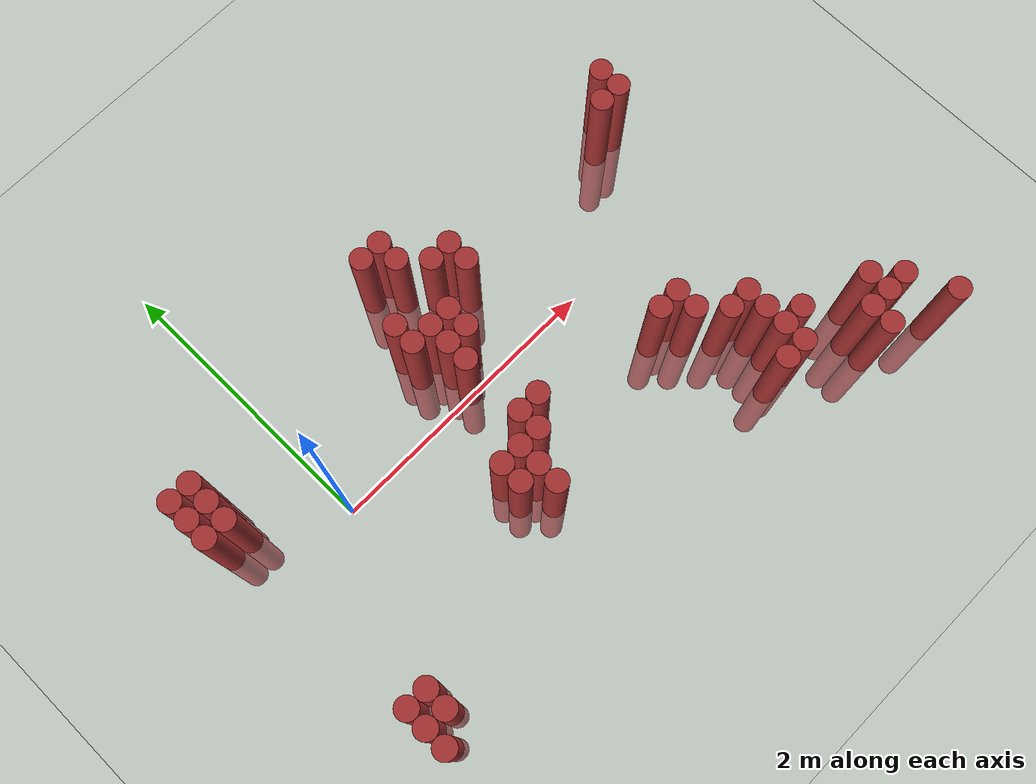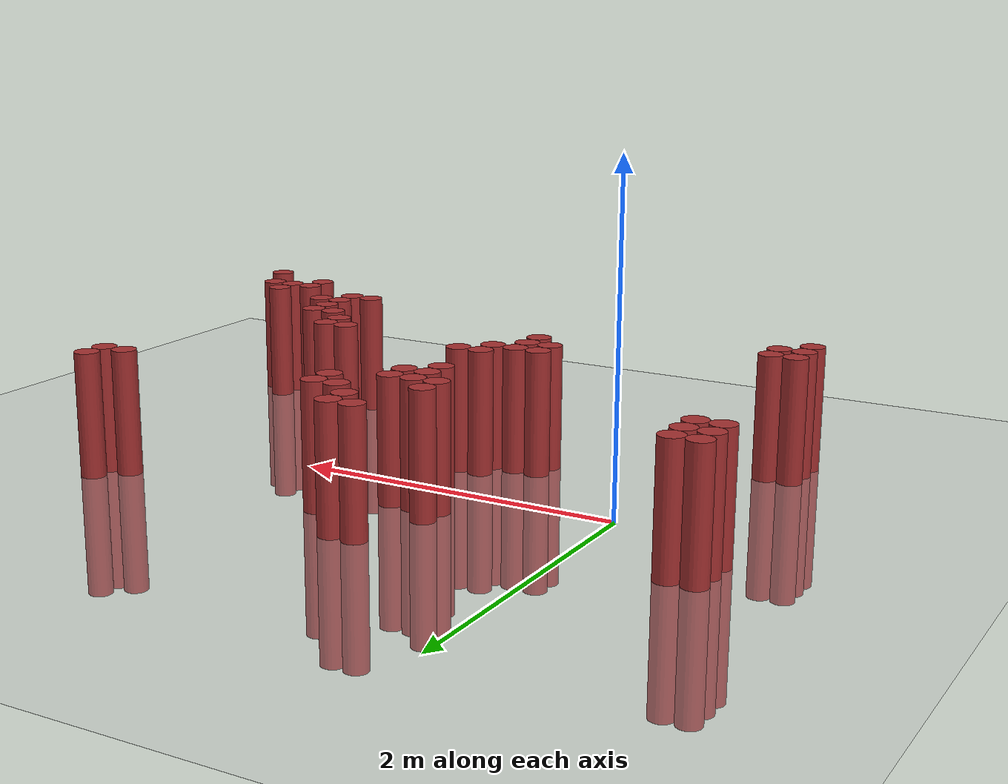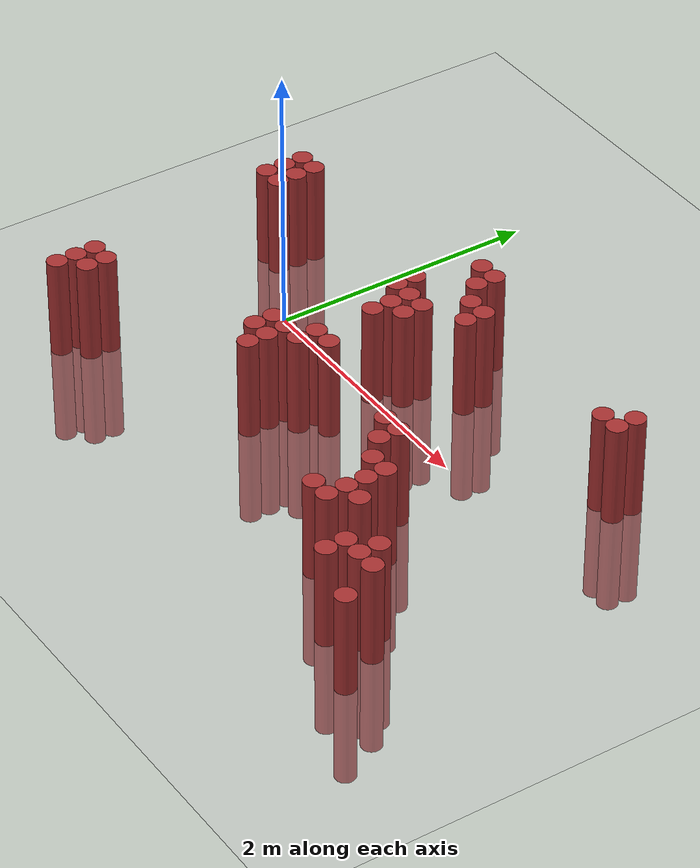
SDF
<sdf version="1.6">
 <world name="default">
  <model name="ground_plane">
   <static>1</static>
   <link name="link">
    <collision name="collision">
     <geometry><plane><normal>0 0 1</normal><size>100 100</size></plane></geometry>
     <surface><friction><ode><mu>100</mu><mu2>50</mu2></ode></friction></surface>
    </collision>
    <visual name="visual">
     <cast_shadows>0</cast_shadows>
     <geometry><plane><normal>0 0 1</normal><size>100 100</size></plane></geometry>
     <material>
      <script><uri>file://media/materials/scripts/gazebo.material</uri><name>Gazebo/Grey</name></script>
     </material>
    </visual>
   </link>
  </model>
  <model name="unit_cylinder_323">
   <static>1</static>
   <pose>-0.725000 0.325000 0.000000 0.000000 0.000000 0.000000</pose>
   <link name="link">
    <inertial>
     <mass>1</mass>
     <inertia><ixx>0.145833</ixx><ixy>0</ixy><ixz>0</ixz><iyy>0.145833</iyy><iyz>0</iyz><izz>0.125</izz></inertia>
    </inertial>
    <collision name="collision">
     <geometry><cylinder><radius>0.075000</radius><length>1.5</length></cylinder></geometry>
    </collision>
    <visual name="visual">
     <geometry><cylinder><radius>0.075000</radius><length>1.5</length></cylinder></geometry>
     <material>
      <ambient>0.648000 0.192000 0.192000 1</ambient>
      <diffuse>0.648000 0.192000 0.192000 1</diffuse>
     </material>
     <material>
      <script><name>Gazebo/Grey</name><uri>file://media/materials/scripts/gazebo.material</uri></script>
     </material>
    </visual>
   </link>
  </model>
  <model name="unit_cylinder_324">
   <static>1</static>
   <pose>-0.725000 0.475000 0.000000 0.000000 0.000000 0.000000</pose>
   <link name="link">
    <inertial>
     <mass>1</mass>
     <inertia><ixx>0.145833</ixx><ixy>0</ixy><ixz>0</ixz><iyy>0.145833</iyy><iyz>0</iyz><izz>0.125</izz></inertia>
    </inertial>
    <collision name="collision">
     <geometry><cylinder><radius>0.075000</radius><length>1.5</length></cylinder></geometry>
    </collision>
    <visual name="visual">
     <geometry><cylinder><radius>0.075000</radius><length>1.5</length></cylinder></geometry>
     <material>
      <ambient>0.648000 0.192000 0.192000 1</ambient>
      <diffuse>0.648000 0.192000 0.192000 1</diffuse>
     </material>
     <material>
      <script><name>Gazebo/Grey</name><uri>file://media/materials/scripts/gazebo.material</uri></script>
     </material>
    </visual>
   </link>
  </model>
  <model name="unit_cylinder_325">
   <static>1</static>
   <pose>-0.725000 0.625000 0.000000 0.000000 0.000000 0.000000</pose>
   <link name="link">
    <inertial>
     <mass>1</mass>
     <inertia><ixx>0.145833</ixx><ixy>0</ixy><ixz>0</ixz><iyy>0.145833</iyy><iyz>0</iyz><izz>0.125</izz></inertia>
    </inertial>
    <collision name="collision">
     <geometry><cylinder><radius>0.075000</radius><length>1.5</length></cylinder></geometry>
    </collision>
    <visual name="visual">
     <geometry><cylinder><radius>0.075000</radius><length>1.5</length></cylinder></geometry>
     <material>
      <ambient>0.648000 0.192000 0.192000 1</ambient>
      <diffuse>0.648000 0.192000 0.192000 1</diffuse>
     </material>
     <material>
      <script><name>Gazebo/Grey</name><uri>file://media/materials/scripts/gazebo.material</uri></script>
     </material>
    </visual>
   </link>
  </model>
  <model name="unit_cylinder_327">
   <static>1</static>
   <pose>-0.575000 -1.475000 0.000000 0.000000 0.000000 0.000000</pose>
   <link name="link">
    <inertial>
     <mass>1</mass>
     <inertia><ixx>0.145833</ixx><ixy>0</ixy><ixz>0</ixz><iyy>0.145833</iyy><iyz>0</iyz><izz>0.125</izz></inertia>
    </inertial>
    <collision name="collision">
     <geometry><cylinder><radius>0.075000</radius><length>1.5</length></cylinder></geometry>
    </collision>
    <visual name="visual">
     <geometry><cylinder><radius>0.075000</radius><length>1.5</length></cylinder></geometry>
     <material>
      <ambient>0.648000 0.192000 0.192000 1</ambient>
      <diffuse>0.648000 0.192000 0.192000 1</diffuse>
     </material>
     <material>
      <script><name>Gazebo/Grey</name><uri>file://media/materials/scripts/gazebo.material</uri></script>
     </material>
    </visual>
   </link>
  </model>
  <model name="unit_cylinder_328">
   <static>1</static>
   <pose>-0.575000 -1.325000 0.000000 0.000000 0.000000 0.000000</pose>
   <link name="link">
    <inertial>
     <mass>1</mass>
     <inertia><ixx>0.145833</ixx><ixy>0</ixy><ixz>0</ixz><iyy>0.145833</iyy><iyz>0</iyz><izz>0.125</izz></inertia>
    </inertial>
    <collision name="collision">
     <geometry><cylinder><radius>0.075000</radius><length>1.5</length></cylinder></geometry>
    </collision>
    <visual name="visual">
     <geometry><cylinder><radius>0.075000</radius><length>1.5</length></cylinder></geometry>
     <material>
      <ambient>0.648000 0.192000 0.192000 1</ambient>
      <diffuse>0.648000 0.192000 0.192000 1</diffuse>
     </material>
     <material>
      <script><name>Gazebo/Grey</name><uri>file://media/materials/scripts/gazebo.material</uri></script>
     </material>
    </visual>
   </link>
  </model>
  <model name="unit_cylinder_329">
   <static>1</static>
   <pose>-0.575000 -1.175000 0.000000 0.000000 0.000000 0.000000</pose>
   <link name="link">
    <inertial>
     <mass>1</mass>
     <inertia><ixx>0.145833</ixx><ixy>0</ixy><ixz>0</ixz><iyy>0.145833</iyy><iyz>0</iyz><izz>0.125</izz></inertia>
    </inertial>
    <collision name="collision">
     <geometry><cylinder><radius>0.075000</radius><length>1.5</length></cylinder></geometry>
    </collision>
    <visual name="visual">
     <geometry><cylinder><radius>0.075000</radius><length>1.5</length></cylinder></geometry>
     <material>
      <ambient>0.648000 0.192000 0.192000 1</ambient>
      <diffuse>0.648000 0.192000 0.192000 1</diffuse>
     </material>
     <material>
      <script><name>Gazebo/Grey</name><uri>file://media/materials/scripts/gazebo.material</uri></script>
     </material>
    </visual>
   </link>
  </model>
  <model name="unit_cylinder_330">
   <static>1</static>
   <pose>-0.575000 0.325000 0.000000 0.000000 0.000000 0.000000</pose>
   <link name="link">
    <inertial>
     <mass>1</mass>
     <inertia><ixx>0.145833</ixx><ixy>0</ixy><ixz>0</ixz><iyy>0.145833</iyy><iyz>0</iyz><izz>0.125</izz></inertia>
    </inertial>
    <collision name="collision">
     <geometry><cylinder><radius>0.075000</radius><length>1.5</length></cylinder></geometry>
    </collision>
    <visual name="visual">
     <geometry><cylinder><radius>0.075000</radius><length>1.5</length></cylinder></geometry>
     <material>
      <ambient>0.648000 0.192000 0.192000 1</ambient>
      <diffuse>0.648000 0.192000 0.192000 1</diffuse>
     </material>
     <material>
      <script><name>Gazebo/Grey</name><uri>file://media/materials/scripts/gazebo.material</uri></script>
     </material>
    </visual>
   </link>
  </model>
  <model name="unit_cylinder_331">
   <static>1</static>
   <pose>-0.575000 0.475000 0.000000 0.000000 0.000000 0.000000</pose>
   <link name="link">
    <inertial>
     <mass>1</mass>
     <inertia><ixx>0.145833</ixx><ixy>0</ixy><ixz>0</ixz><iyy>0.145833</iyy><iyz>0</iyz><izz>0.125</izz></inertia>
    </inertial>
    <collision name="collision">
     <geometry><cylinder><radius>0.075000</radius><length>1.5</length></cylinder></geometry>
    </collision>
    <visual name="visual">
     <geometry><cylinder><radius>0.075000</radius><length>1.5</length></cylinder></geometry>
     <material>
      <ambient>0.648000 0.192000 0.192000 1</ambient>
      <diffuse>0.648000 0.192000 0.192000 1</diffuse>
     </material>
     <material>
      <script><name>Gazebo/Grey</name><uri>file://media/materials/scripts/gazebo.material</uri></script>
     </material>
    </visual>
   </link>
  </model>
  <model name="unit_cylinder_332">
   <static>1</static>
   <pose>-0.575000 0.625000 0.000000 0.000000 0.000000 0.000000</pose>
   <link name="link">
    <inertial>
     <mass>1</mass>
     <inertia><ixx>0.145833</ixx><ixy>0</ixy><ixz>0</ixz><iyy>0.145833</iyy><iyz>0</iyz><izz>0.125</izz></inertia>
    </inertial>
    <collision name="collision">
     <geometry><cylinder><radius>0.075000</radius><length>1.5</length></cylinder></geometry>
    </collision>
    <visual name="visual">
     <geometry><cylinder><radius>0.075000</radius><length>1.5</length></cylinder></geometry>
     <material>
      <ambient>0.648000 0.192000 0.192000 1</ambient>
      <diffuse>0.648000 0.192000 0.192000 1</diffuse>
     </material>
     <material>
      <script><name>Gazebo/Grey</name><uri>file://media/materials/scripts/gazebo.material</uri></script>
     </material>
    </visual>
   </link>
  </model>
  <model name="unit_cylinder_337">
   <static>1</static>
   <pose>-0.425000 -1.325000 0.000000 0.000000 0.000000 0.000000</pose>
   <link name="link">
    <inertial>
     <mass>1</mass>
     <inertia><ixx>0.145833</ixx><ixy>0</ixy><ixz>0</ixz><iyy>0.145833</iyy><iyz>0</iyz><izz>0.125</izz></inertia>
    </inertial>
    <collision name="collision">
     <geometry><cylinder><radius>0.075000</radius><length>1.5</length></cylinder></geometry>
    </collision>
    <visual name="visual">
     <geometry><cylinder><radius>0.075000</radius><length>1.5</length></cylinder></geometry>
     <material>
      <ambient>0.648000 0.192000 0.192000 1</ambient>
      <diffuse>0.648000 0.192000 0.192000 1</diffuse>
     </material>
     <material>
      <script><name>Gazebo/Grey</name><uri>file://media/materials/scripts/gazebo.material</uri></script>
     </material>
    </visual>
   </link>
  </model>
  <model name="unit_cylinder_338">
   <static>1</static>
   <pose>-0.425000 -1.175000 0.000000 0.000000 0.000000 0.000000</pose>
   <link name="link">
    <inertial>
     <mass>1</mass>
     <inertia><ixx>0.145833</ixx><ixy>0</ixy><ixz>0</ixz><iyy>0.145833</iyy><iyz>0</iyz><izz>0.125</izz></inertia>
    </inertial>
    <collision name="collision">
     <geometry><cylinder><radius>0.075000</radius><length>1.5</length></cylinder></geometry>
    </collision>
    <visual name="visual">
     <geometry><cylinder><radius>0.075000</radius><length>1.5</length></cylinder></geometry>
     <material>
      <ambient>0.648000 0.192000 0.192000 1</ambient>
      <diffuse>0.648000 0.192000 0.192000 1</diffuse>
     </material>
     <material>
      <script><name>Gazebo/Grey</name><uri>file://media/materials/scripts/gazebo.material</uri></script>
     </material>
    </visual>
   </link>
  </model>
  <model name="unit_cylinder_344">
   <static>1</static>
   <pose>0.775000 -0.725000 0.000000 0.000000 0.000000 0.000000</pose>
   <link name="link">
    <inertial>
     <mass>1</mass>
     <inertia><ixx>0.145833</ixx><ixy>0</ixy><ixz>0</ixz><iyy>0.145833</iyy><iyz>0</iyz><izz>0.125</izz></inertia>
    </inertial>
    <collision name="collision">
     <geometry><cylinder><radius>0.075000</radius><length>1.5</length></cylinder></geometry>
    </collision>
    <visual name="visual">
     <geometry><cylinder><radius>0.075000</radius><length>1.5</length></cylinder></geometry>
     <material>
      <ambient>0.648000 0.192000 0.192000 1</ambient>
      <diffuse>0.648000 0.192000 0.192000 1</diffuse>
     </material>
     <material>
      <script><name>Gazebo/Grey</name><uri>file://media/materials/scripts/gazebo.material</uri></script>
     </material>
    </visual>
   </link>
  </model>
  <model name="unit_cylinder_345">
   <static>1</static>
   <pose>0.775000 -0.575000 0.000000 0.000000 0.000000 0.000000</pose>
   <link name="link">
    <inertial>
     <mass>1</mass>
     <inertia><ixx>0.145833</ixx><ixy>0</ixy><ixz>0</ixz><iyy>0.145833</iyy><iyz>0</iyz><izz>0.125</izz></inertia>
    </inertial>
    <collision name="collision">
     <geometry><cylinder><radius>0.075000</radius><length>1.5</length></cylinder></geometry>
    </collision>
    <visual name="visual">
     <geometry><cylinder><radius>0.075000</radius><length>1.5</length></cylinder></geometry>
     <material>
      <ambient>0.648000 0.192000 0.192000 1</ambient>
      <diffuse>0.648000 0.192000 0.192000 1</diffuse>
     </material>
     <material>
      <script><name>Gazebo/Grey</name><uri>file://media/materials/scripts/gazebo.material</uri></script>
     </material>
    </visual>
   </link>
  </model>
  <model name="unit_cylinder_346">
   <static>1</static>
   <pose>0.925000 -0.875000 0.000000 0.000000 0.000000 0.000000</pose>
   <link name="link">
    <inertial>
     <mass>1</mass>
     <inertia><ixx>0.145833</ixx><ixy>0</ixy><ixz>0</ixz><iyy>0.145833</iyy><iyz>0</iyz><izz>0.125</izz></inertia>
    </inertial>
    <collision name="collision">
     <geometry><cylinder><radius>0.075000</radius><length>1.5</length></cylinder></geometry>
    </collision>
    <visual name="visual">
     <geometry><cylinder><radius>0.075000</radius><length>1.5</length></cylinder></geometry>
     <material>
      <ambient>0.648000 0.192000 0.192000 1</ambient>
      <diffuse>0.648000 0.192000 0.192000 1</diffuse>
     </material>
     <material>
      <script><name>Gazebo/Grey</name><uri>file://media/materials/scripts/gazebo.material</uri></script>
     </material>
    </visual>
   </link>
  </model>
  <model name="unit_cylinder_347">
   <static>1</static>
   <pose>0.925000 -0.725000 0.000000 0.000000 0.000000 0.000000</pose>
   <link name="link">
    <inertial>
     <mass>1</mass>
     <inertia><ixx>0.145833</ixx><ixy>0</ixy><ixz>0</ixz><iyy>0.145833</iyy><iyz>0</iyz><izz>0.125</izz></inertia>
    </inertial>
    <collision name="collision">
     <geometry><cylinder><radius>0.075000</radius><length>1.5</length></cylinder></geometry>
    </collision>
    <visual name="visual">
     <geometry><cylinder><radius>0.075000</radius><length>1.5</length></cylinder></geometry>
     <material>
      <ambient>0.648000 0.192000 0.192000 1</ambient>
      <diffuse>0.648000 0.192000 0.192000 1</diffuse>
     </material>
     <material>
      <script><name>Gazebo/Grey</name><uri>file://media/materials/scripts/gazebo.material</uri></script>
     </material>
    </visual>
   </link>
  </model>
  <model name="unit_cylinder_348">
   <static>1</static>
   <pose>0.925000 -0.575000 0.000000 0.000000 0.000000 0.000000</pose>
   <link name="link">
    <inertial>
     <mass>1</mass>
     <inertia><ixx>0.145833</ixx><ixy>0</ixy><ixz>0</ixz><iyy>0.145833</iyy><iyz>0</iyz><izz>0.125</izz></inertia>
    </inertial>
    <collision name="collision">
     <geometry><cylinder><radius>0.075000</radius><length>1.5</length></cylinder></geometry>
    </collision>
    <visual name="visual">
     <geometry><cylinder><radius>0.075000</radius><length>1.5</length></cylinder></geometry>
     <material>
      <ambient>0.648000 0.192000 0.192000 1</ambient>
      <diffuse>0.648000 0.192000 0.192000 1</diffuse>
     </material>
     <material>
      <script><name>Gazebo/Grey</name><uri>file://media/materials/scripts/gazebo.material</uri></script>
     </material>
    </visual>
   </link>
  </model>
  <model name="unit_cylinder_349">
   <static>1</static>
   <pose>0.925000 0.325000 0.000000 0.000000 0.000000 0.000000</pose>
   <link name="link">
    <inertial>
     <mass>1</mass>
     <inertia><ixx>0.145833</ixx><ixy>0</ixy><ixz>0</ixz><iyy>0.145833</iyy><iyz>0</iyz><izz>0.125</izz></inertia>
    </inertial>
    <collision name="collision">
     <geometry><cylinder><radius>0.075000</radius><length>1.5</length></cylinder></geometry>
    </collision>
    <visual name="visual">
     <geometry><cylinder><radius>0.075000</radius><length>1.5</length></cylinder></geometry>
     <material>
      <ambient>0.648000 0.192000 0.192000 1</ambient>
      <diffuse>0.648000 0.192000 0.192000 1</diffuse>
     </material>
     <material>
      <script><name>Gazebo/Grey</name><uri>file://media/materials/scripts/gazebo.material</uri></script>
     </material>
    </visual>
   </link>
  </model>
  <model name="unit_cylinder_350">
   <static>1</static>
   <pose>0.925000 0.475000 0.000000 0.000000 0.000000 0.000000</pose>
   <link name="link">
    <inertial>
     <mass>1</mass>
     <inertia><ixx>0.145833</ixx><ixy>0</ixy><ixz>0</ixz><iyy>0.145833</iyy><iyz>0</iyz><izz>0.125</izz></inertia>
    </inertial>
    <collision name="collision">
     <geometry><cylinder><radius>0.075000</radius><length>1.5</length></cylinder></geometry>
    </collision>
    <visual name="visual">
     <geometry><cylinder><radius>0.075000</radius><length>1.5</length></cylinder></geometry>
     <material>
      <ambient>0.648000 0.192000 0.192000 1</ambient>
      <diffuse>0.648000 0.192000 0.192000 1</diffuse>
     </material>
     <material>
      <script><name>Gazebo/Grey</name><uri>file://media/materials/scripts/gazebo.material</uri></script>
     </material>
    </visual>
   </link>
  </model>
  <model name="unit_cylinder_353">
   <static>1</static>
   <pose>1.075000 -0.575000 0.000000 0.000000 0.000000 0.000000</pose>
   <link name="link">
    <inertial>
     <mass>1</mass>
     <inertia><ixx>0.145833</ixx><ixy>0</ixy><ixz>0</ixz><iyy>0.145833</iyy><iyz>0</iyz><izz>0.125</izz></inertia>
    </inertial>
    <collision name="collision">
     <geometry><cylinder><radius>0.075000</radius><length>1.5</length></cylinder></geometry>
    </collision>
    <visual name="visual">
     <geometry><cylinder><radius>0.075000</radius><length>1.5</length></cylinder></geometry>
     <material>
      <ambient>0.648000 0.192000 0.192000 1</ambient>
      <diffuse>0.648000 0.192000 0.192000 1</diffuse>
     </material>
     <material>
      <script><name>Gazebo/Grey</name><uri>file://media/materials/scripts/gazebo.material</uri></script>
     </material>
    </visual>
   </link>
  </model>
  <model name="unit_cylinder_354">
   <static>1</static>
   <pose>1.075000 -0.425000 0.000000 0.000000 0.000000 0.000000</pose>
   <link name="link">
    <inertial>
     <mass>1</mass>
     <inertia><ixx>0.145833</ixx><ixy>0</ixy><ixz>0</ixz><iyy>0.145833</iyy><iyz>0</iyz><izz>0.125</izz></inertia>
    </inertial>
    <collision name="collision">
     <geometry><cylinder><radius>0.075000</radius><length>1.5</length></cylinder></geometry>
    </collision>
    <visual name="visual">
     <geometry><cylinder><radius>0.075000</radius><length>1.5</length></cylinder></geometry>
     <material>
      <ambient>0.648000 0.192000 0.192000 1</ambient>
      <diffuse>0.648000 0.192000 0.192000 1</diffuse>
     </material>
     <material>
      <script><name>Gazebo/Grey</name><uri>file://media/materials/scripts/gazebo.material</uri></script>
     </material>
    </visual>
   </link>
  </model>
  <model name="unit_cylinder_355">
   <static>1</static>
   <pose>1.075000 0.025000 0.000000 0.000000 0.000000 0.000000</pose>
   <link name="link">
    <inertial>
     <mass>1</mass>
     <inertia><ixx>0.145833</ixx><ixy>0</ixy><ixz>0</ixz><iyy>0.145833</iyy><iyz>0</iyz><izz>0.125</izz></inertia>
    </inertial>
    <collision name="collision">
     <geometry><cylinder><radius>0.075000</radius><length>1.5</length></cylinder></geometry>
    </collision>
    <visual name="visual">
     <geometry><cylinder><radius>0.075000</radius><length>1.5</length></cylinder></geometry>
     <material>
      <ambient>0.648000 0.192000 0.192000 1</ambient>
      <diffuse>0.648000 0.192000 0.192000 1</diffuse>
     </material>
     <material>
      <script><name>Gazebo/Grey</name><uri>file://media/materials/scripts/gazebo.material</uri></script>
     </material>
    </visual>
   </link>
  </model>
  <model name="unit_cylinder_356">
   <static>1</static>
   <pose>1.075000 0.175000 0.000000 0.000000 0.000000 0.000000</pose>
   <link name="link">
    <inertial>
     <mass>1</mass>
     <inertia><ixx>0.145833</ixx><ixy>0</ixy><ixz>0</ixz><iyy>0.145833</iyy><iyz>0</iyz><izz>0.125</izz></inertia>
    </inertial>
    <collision name="collision">
     <geometry><cylinder><radius>0.075000</radius><length>1.5</length></cylinder></geometry>
    </collision>
    <visual name="visual">
     <geometry><cylinder><radius>0.075000</radius><length>1.5</length></cylinder></geometry>
     <material>
      <ambient>0.648000 0.192000 0.192000 1</ambient>
      <diffuse>0.648000 0.192000 0.192000 1</diffuse>
     </material>
     <material>
      <script><name>Gazebo/Grey</name><uri>file://media/materials/scripts/gazebo.material</uri></script>
     </material>
    </visual>
   </link>
  </model>
  <model name="unit_cylinder_357">
   <static>1</static>
   <pose>1.075000 0.325000 0.000000 0.000000 0.000000 0.000000</pose>
   <link name="link">
    <inertial>
     <mass>1</mass>
     <inertia><ixx>0.145833</ixx><ixy>0</ixy><ixz>0</ixz><iyy>0.145833</iyy><iyz>0</iyz><izz>0.125</izz></inertia>
    </inertial>
    <collision name="collision">
     <geometry><cylinder><radius>0.075000</radius><length>1.5</length></cylinder></geometry>
    </collision>
    <visual name="visual">
     <geometry><cylinder><radius>0.075000</radius><length>1.5</length></cylinder></geometry>
     <material>
      <ambient>0.648000 0.192000 0.192000 1</ambient>
      <diffuse>0.648000 0.192000 0.192000 1</diffuse>
     </material>
     <material>
      <script><name>Gazebo/Grey</name><uri>file://media/materials/scripts/gazebo.material</uri></script>
     </material>
    </visual>
   </link>
  </model>
  <model name="unit_cylinder_358">
   <static>1</static>
   <pose>1.075000 0.925000 0.000000 0.000000 0.000000 0.000000</pose>
   <link name="link">
    <inertial>
     <mass>1</mass>
     <inertia><ixx>0.145833</ixx><ixy>0</ixy><ixz>0</ixz><iyy>0.145833</iyy><iyz>0</iyz><izz>0.125</izz></inertia>
    </inertial>
    <collision name="collision">
     <geometry><cylinder><radius>0.075000</radius><length>1.5</length></cylinder></geometry>
    </collision>
    <visual name="visual">
     <geometry><cylinder><radius>0.075000</radius><length>1.5</length></cylinder></geometry>
     <material>
      <ambient>0.648000 0.192000 0.192000 1</ambient>
      <diffuse>0.648000 0.192000 0.192000 1</diffuse>
     </material>
     <material>
      <script><name>Gazebo/Grey</name><uri>file://media/materials/scripts/gazebo.material</uri></script>
     </material>
    </visual>
   </link>
  </model>
  <model name="unit_cylinder_363">
   <static>1</static>
   <pose>1.225000 -0.425000 0.000000 0.000000 0.000000 0.000000</pose>
   <link name="link">
    <inertial>
     <mass>1</mass>
     <inertia><ixx>0.145833</ixx><ixy>0</ixy><ixz>0</ixz><iyy>0.145833</iyy><iyz>0</iyz><izz>0.125</izz></inertia>
    </inertial>
    <collision name="collision">
     <geometry><cylinder><radius>0.075000</radius><length>1.5</length></cylinder></geometry>
    </collision>
    <visual name="visual">
     <geometry><cylinder><radius>0.075000</radius><length>1.5</length></cylinder></geometry>
     <material>
      <ambient>0.648000 0.192000 0.192000 1</ambient>
      <diffuse>0.648000 0.192000 0.192000 1</diffuse>
     </material>
     <material>
      <script><name>Gazebo/Grey</name><uri>file://media/materials/scripts/gazebo.material</uri></script>
     </material>
    </visual>
   </link>
  </model>
  <model name="unit_cylinder_364">
   <static>1</static>
   <pose>1.225000 0.175000 0.000000 0.000000 0.000000 0.000000</pose>
   <link name="link">
    <inertial>
     <mass>1</mass>
     <inertia><ixx>0.145833</ixx><ixy>0</ixy><ixz>0</ixz><iyy>0.145833</iyy><iyz>0</iyz><izz>0.125</izz></inertia>
    </inertial>
    <collision name="collision">
     <geometry><cylinder><radius>0.075000</radius><length>1.5</length></cylinder></geometry>
    </collision>
    <visual name="visual">
     <geometry><cylinder><radius>0.075000</radius><length>1.5</length></cylinder></geometry>
     <material>
      <ambient>0.648000 0.192000 0.192000 1</ambient>
      <diffuse>0.648000 0.192000 0.192000 1</diffuse>
     </material>
     <material>
      <script><name>Gazebo/Grey</name><uri>file://media/materials/scripts/gazebo.material</uri></script>
     </material>
    </visual>
   </link>
  </model>
  <model name="unit_cylinder_365">
   <static>1</static>
   <pose>1.225000 0.325000 0.000000 0.000000 0.000000 0.000000</pose>
   <link name="link">
    <inertial>
     <mass>1</mass>
     <inertia><ixx>0.145833</ixx><ixy>0</ixy><ixz>0</ixz><iyy>0.145833</iyy><iyz>0</iyz><izz>0.125</izz></inertia>
    </inertial>
    <collision name="collision">
     <geometry><cylinder><radius>0.075000</radius><length>1.5</length></cylinder></geometry>
    </collision>
    <visual name="visual">
     <geometry><cylinder><radius>0.075000</radius><length>1.5</length></cylinder></geometry>
     <material>
      <ambient>0.648000 0.192000 0.192000 1</ambient>
      <diffuse>0.648000 0.192000 0.192000 1</diffuse>
     </material>
     <material>
      <script><name>Gazebo/Grey</name><uri>file://media/materials/scripts/gazebo.material</uri></script>
     </material>
    </visual>
   </link>
  </model>
  <model name="unit_cylinder_366">
   <static>1</static>
   <pose>1.225000 0.775000 0.000000 0.000000 0.000000 0.000000</pose>
   <link name="link">
    <inertial>
     <mass>1</mass>
     <inertia><ixx>0.145833</ixx><ixy>0</ixy><ixz>0</ixz><iyy>0.145833</iyy><iyz>0</iyz><izz>0.125</izz></inertia>
    </inertial>
    <collision name="collision">
     <geometry><cylinder><radius>0.075000</radius><length>1.5</length></cylinder></geometry>
    </collision>
    <visual name="visual">
     <geometry><cylinder><radius>0.075000</radius><length>1.5</length></cylinder></geometry>
     <material>
      <ambient>0.648000 0.192000 0.192000 1</ambient>
      <diffuse>0.648000 0.192000 0.192000 1</diffuse>
     </material>
     <material>
      <script><name>Gazebo/Grey</name><uri>file://media/materials/scripts/gazebo.material</uri></script>
     </material>
    </visual>
   </link>
  </model>
  <model name="unit_cylinder_367">
   <static>1</static>
   <pose>1.225000 0.925000 0.000000 0.000000 0.000000 0.000000</pose>
   <link name="link">
    <inertial>
     <mass>1</mass>
     <inertia><ixx>0.145833</ixx><ixy>0</ixy><ixz>0</ixz><iyy>0.145833</iyy><iyz>0</iyz><izz>0.125</izz></inertia>
    </inertial>
    <collision name="collision">
     <geometry><cylinder><radius>0.075000</radius><length>1.5</length></cylinder></geometry>
    </collision>
    <visual name="visual">
     <geometry><cylinder><radius>0.075000</radius><length>1.5</length></cylinder></geometry>
     <material>
      <ambient>0.648000 0.192000 0.192000 1</ambient>
      <diffuse>0.648000 0.192000 0.192000 1</diffuse>
     </material>
     <material>
      <script><name>Gazebo/Grey</name><uri>file://media/materials/scripts/gazebo.material</uri></script>
     </material>
    </visual>
   </link>
  </model>
  <model name="unit_cylinder_371">
   <static>1</static>
   <pose>1.375000 0.625000 0.000000 0.000000 0.000000 0.000000</pose>
   <link name="link">
    <inertial>
     <mass>1</mass>
     <inertia><ixx>0.145833</ixx><ixy>0</ixy><ixz>0</ixz><iyy>0.145833</iyy><iyz>0</iyz><izz>0.125</izz></inertia>
    </inertial>
    <collision name="collision">
     <geometry><cylinder><radius>0.075000</radius><length>1.5</length></cylinder></geometry>
    </collision>
    <visual name="visual">
     <geometry><cylinder><radius>0.075000</radius><length>1.5</length></cylinder></geometry>
     <material>
      <ambient>0.648000 0.192000 0.192000 1</ambient>
      <diffuse>0.648000 0.192000 0.192000 1</diffuse>
     </material>
     <material>
      <script><name>Gazebo/Grey</name><uri>file://media/materials/scripts/gazebo.material</uri></script>
     </material>
    </visual>
   </link>
  </model>
  <model name="unit_cylinder_373">
   <static>1</static>
   <pose>1.525000 0.475000 0.000000 0.000000 0.000000 0.000000</pose>
   <link name="link">
    <inertial>
     <mass>1</mass>
     <inertia><ixx>0.145833</ixx><ixy>0</ixy><ixz>0</ixz><iyy>0.145833</iyy><iyz>0</iyz><izz>0.125</izz></inertia>
    </inertial>
    <collision name="collision">
     <geometry><cylinder><radius>0.075000</radius><length>1.5</length></cylinder></geometry>
    </collision>
    <visual name="visual">
     <geometry><cylinder><radius>0.075000</radius><length>1.5</length></cylinder></geometry>
     <material>
      <ambient>0.648000 0.192000 0.192000 1</ambient>
      <diffuse>0.648000 0.192000 0.192000 1</diffuse>
     </material>
     <material>
      <script><name>Gazebo/Grey</name><uri>file://media/materials/scripts/gazebo.material</uri></script>
     </material>
    </visual>
   </link>
  </model>
  <model name="unit_cylinder_374">
   <static>1</static>
   <pose>1.525000 0.625000 0.000000 0.000000 0.000000 0.000000</pose>
   <link name="link">
    <inertial>
     <mass>1</mass>
     <inertia><ixx>0.145833</ixx><ixy>0</ixy><ixz>0</ixz><iyy>0.145833</iyy><iyz>0</iyz><izz>0.125</izz></inertia>
    </inertial>
    <collision name="collision">
     <geometry><cylinder><radius>0.075000</radius><length>1.5</length></cylinder></geometry>
    </collision>
    <visual name="visual">
     <geometry><cylinder><radius>0.075000</radius><length>1.5</length></cylinder></geometry>
     <material>
      <ambient>0.648000 0.192000 0.192000 1</ambient>
      <diffuse>0.648000 0.192000 0.192000 1</diffuse>
     </material>
     <material>
      <script><name>Gazebo/Grey</name><uri>file://media/materials/scripts/gazebo.material</uri></script>
     </material>
    </visual>
   </link>
  </model>
  <model name="unit_cylinder_386">
   <static>1</static>
   <pose>2.125000 -0.575000 0.000000 0.000000 0.000000 0.000000</pose>
   <link name="link">
    <inertial>
     <mass>1</mass>
     <inertia><ixx>0.145833</ixx><ixy>0</ixy><ixz>0</ixz><iyy>0.145833</iyy><iyz>0</iyz><izz>0.125</izz></inertia>
    </inertial>
    <collision name="collision">
     <geometry><cylinder><radius>0.075000</radius><length>1.5</length></cylinder></geometry>
    </collision>
    <visual name="visual">
     <geometry><cylinder><radius>0.075000</radius><length>1.5</length></cylinder></geometry>
     <material>
      <ambient>0.648000 0.192000 0.192000 1</ambient>
      <diffuse>0.648000 0.192000 0.192000 1</diffuse>
     </material>
     <material>
      <script><name>Gazebo/Grey</name><uri>file://media/materials/scripts/gazebo.material</uri></script>
     </material>
    </visual>
   </link>
  </model>
  <model name="unit_cylinder_389">
   <static>1</static>
   <pose>2.275000 -0.725000 0.000000 0.000000 0.000000 0.000000</pose>
   <link name="link">
    <inertial>
     <mass>1</mass>
     <inertia><ixx>0.145833</ixx><ixy>0</ixy><ixz>0</ixz><iyy>0.145833</iyy><iyz>0</iyz><izz>0.125</izz></inertia>
    </inertial>
    <collision name="collision">
     <geometry><cylinder><radius>0.075000</radius><length>1.5</length></cylinder></geometry>
    </collision>
    <visual name="visual">
     <geometry><cylinder><radius>0.075000</radius><length>1.5</length></cylinder></geometry>
     <material>
      <ambient>0.648000 0.192000 0.192000 1</ambient>
      <diffuse>0.648000 0.192000 0.192000 1</diffuse>
     </material>
     <material>
      <script><name>Gazebo/Grey</name><uri>file://media/materials/scripts/gazebo.material</uri></script>
     </material>
    </visual>
   </link>
  </model>
  <model name="unit_cylinder_390">
   <static>1</static>
   <pose>2.275000 -0.575000 0.000000 0.000000 0.000000 0.000000</pose>
   <link name="link">
    <inertial>
     <mass>1</mass>
     <inertia><ixx>0.145833</ixx><ixy>0</ixy><ixz>0</ixz><iyy>0.145833</iyy><iyz>0</iyz><izz>0.125</izz></inertia>
    </inertial>
    <collision name="collision">
     <geometry><cylinder><radius>0.075000</radius><length>1.5</length></cylinder></geometry>
    </collision>
    <visual name="visual">
     <geometry><cylinder><radius>0.075000</radius><length>1.5</length></cylinder></geometry>
     <material>
      <ambient>0.648000 0.192000 0.192000 1</ambient>
      <diffuse>0.648000 0.192000 0.192000 1</diffuse>
     </material>
     <material>
      <script><name>Gazebo/Grey</name><uri>file://media/materials/scripts/gazebo.material</uri></script>
     </material>
    </visual>
   </link>
  </model>
  <model name="unit_cylinder_393">
   <static>1</static>
   <pose>2.425000 -1.325000 0.000000 0.000000 0.000000 0.000000</pose>
   <link name="link">
    <inertial>
     <mass>1</mass>
     <inertia><ixx>0.145833</ixx><ixy>0</ixy><ixz>0</ixz><iyy>0.145833</iyy><iyz>0</iyz><izz>0.125</izz></inertia>
    </inertial>
    <collision name="collision">
     <geometry><cylinder><radius>0.075000</radius><length>1.5</length></cylinder></geometry>
    </collision>
    <visual name="visual">
     <geometry><cylinder><radius>0.075000</radius><length>1.5</length></cylinder></geometry>
     <material>
      <ambient>0.648000 0.192000 0.192000 1</ambient>
      <diffuse>0.648000 0.192000 0.192000 1</diffuse>
     </material>
     <material>
      <script><name>Gazebo/Grey</name><uri>file://media/materials/scripts/gazebo.material</uri></script>
     </material>
    </visual>
   </link>
  </model>
  <model name="unit_cylinder_394">
   <static>1</static>
   <pose>2.425000 -0.875000 0.000000 0.000000 0.000000 0.000000</pose>
   <link name="link">
    <inertial>
     <mass>1</mass>
     <inertia><ixx>0.145833</ixx><ixy>0</ixy><ixz>0</ixz><iyy>0.145833</iyy><iyz>0</iyz><izz>0.125</izz></inertia>
    </inertial>
    <collision name="collision">
     <geometry><cylinder><radius>0.075000</radius><length>1.5</length></cylinder></geometry>
    </collision>
    <visual name="visual">
     <geometry><cylinder><radius>0.075000</radius><length>1.5</length></cylinder></geometry>
     <material>
      <ambient>0.648000 0.192000 0.192000 1</ambient>
      <diffuse>0.648000 0.192000 0.192000 1</diffuse>
     </material>
     <material>
      <script><name>Gazebo/Grey</name><uri>file://media/materials/scripts/gazebo.material</uri></script>
     </material>
    </visual>
   </link>
  </model>
  <model name="unit_cylinder_399">
   <static>1</static>
   <pose>2.575000 -1.325000 0.000000 0.000000 0.000000 0.000000</pose>
   <link name="link">
    <inertial>
     <mass>1</mass>
     <inertia><ixx>0.145833</ixx><ixy>0</ixy><ixz>0</ixz><iyy>0.145833</iyy><iyz>0</iyz><izz>0.125</izz></inertia>
    </inertial>
    <collision name="collision">
     <geometry><cylinder><radius>0.075000</radius><length>1.5</length></cylinder></geometry>
    </collision>
    <visual name="visual">
     <geometry><cylinder><radius>0.075000</radius><length>1.5</length></cylinder></geometry>
     <material>
      <ambient>0.648000 0.192000 0.192000 1</ambient>
      <diffuse>0.648000 0.192000 0.192000 1</diffuse>
     </material>
     <material>
      <script><name>Gazebo/Grey</name><uri>file://media/materials/scripts/gazebo.material</uri></script>
     </material>
    </visual>
   </link>
  </model>
  <model name="unit_cylinder_400">
   <static>1</static>
   <pose>2.575000 -1.175000 0.000000 0.000000 0.000000 0.000000</pose>
   <link name="link">
    <inertial>
     <mass>1</mass>
     <inertia><ixx>0.145833</ixx><ixy>0</ixy><ixz>0</ixz><iyy>0.145833</iyy><iyz>0</iyz><izz>0.125</izz></inertia>
    </inertial>
    <collision name="collision">
     <geometry><cylinder><radius>0.075000</radius><length>1.5</length></cylinder></geometry>
    </collision>
    <visual name="visual">
     <geometry><cylinder><radius>0.075000</radius><length>1.5</length></cylinder></geometry>
     <material>
      <ambient>0.648000 0.192000 0.192000 1</ambient>
      <diffuse>0.648000 0.192000 0.192000 1</diffuse>
     </material>
     <material>
      <script><name>Gazebo/Grey</name><uri>file://media/materials/scripts/gazebo.material</uri></script>
     </material>
    </visual>
   </link>
  </model>
  <model name="unit_cylinder_401">
   <static>1</static>
   <pose>2.575000 -1.025000 0.000000 0.000000 0.000000 0.000000</pose>
   <link name="link">
    <inertial>
     <mass>1</mass>
     <inertia><ixx>0.145833</ixx><ixy>0</ixy><ixz>0</ixz><iyy>0.145833</iyy><iyz>0</iyz><izz>0.125</izz></inertia>
    </inertial>
    <collision name="collision">
     <geometry><cylinder><radius>0.075000</radius><length>1.5</length></cylinder></geometry>
    </collision>
    <visual name="visual">
     <geometry><cylinder><radius>0.075000</radius><length>1.5</length></cylinder></geometry>
     <material>
      <ambient>0.648000 0.192000 0.192000 1</ambient>
      <diffuse>0.648000 0.192000 0.192000 1</diffuse>
     </material>
     <material>
      <script><name>Gazebo/Grey</name><uri>file://media/materials/scripts/gazebo.material</uri></script>
     </material>
    </visual>
   </link>
  </model>
  <model name="unit_cylinder_402">
   <static>1</static>
   <pose>2.575000 -0.875000 0.000000 0.000000 0.000000 0.000000</pose>
   <link name="link">
    <inertial>
     <mass>1</mass>
     <inertia><ixx>0.145833</ixx><ixy>0</ixy><ixz>0</ixz><iyy>0.145833</iyy><iyz>0</iyz><izz>0.125</izz></inertia>
    </inertial>
    <collision name="collision">
     <geometry><cylinder><radius>0.075000</radius><length>1.5</length></cylinder></geometry>
    </collision>
    <visual name="visual">
     <geometry><cylinder><radius>0.075000</radius><length>1.5</length></cylinder></geometry>
     <material>
      <ambient>0.648000 0.192000 0.192000 1</ambient>
      <diffuse>0.648000 0.192000 0.192000 1</diffuse>
     </material>
     <material>
      <script><name>Gazebo/Grey</name><uri>file://media/materials/scripts/gazebo.material</uri></script>
     </material>
    </visual>
   </link>
  </model>
  <model name="unit_cylinder_404">
   <static>1</static>
   <pose>2.725000 -1.175000 0.000000 0.000000 0.000000 0.000000</pose>
   <link name="link">
    <inertial>
     <mass>1</mass>
     <inertia><ixx>0.145833</ixx><ixy>0</ixy><ixz>0</ixz><iyy>0.145833</iyy><iyz>0</iyz><izz>0.125</izz></inertia>
    </inertial>
    <collision name="collision">
     <geometry><cylinder><radius>0.075000</radius><length>1.5</length></cylinder></geometry>
    </collision>
    <visual name="visual">
     <geometry><cylinder><radius>0.075000</radius><length>1.5</length></cylinder></geometry>
     <material>
      <ambient>0.648000 0.192000 0.192000 1</ambient>
      <diffuse>0.648000 0.192000 0.192000 1</diffuse>
     </material>
     <material>
      <script><name>Gazebo/Grey</name><uri>file://media/materials/scripts/gazebo.material</uri></script>
     </material>
    </visual>
   </link>
  </model>
  <model name="unit_cylinder_405">
   <static>1</static>
   <pose>2.875000 0.625000 0.000000 0.000000 0.000000 0.000000</pose>
   <link name="link">
    <inertial>
     <mass>1</mass>
     <inertia><ixx>0.145833</ixx><ixy>0</ixy><ixz>0</ixz><iyy>0.145833</iyy><iyz>0</iyz><izz>0.125</izz></inertia>
    </inertial>
    <collision name="collision">
     <geometry><cylinder><radius>0.075000</radius><length>1.5</length></cylinder></geometry>
    </collision>
    <visual name="visual">
     <geometry><cylinder><radius>0.075000</radius><length>1.5</length></cylinder></geometry>
     <material>
      <ambient>0.648000 0.192000 0.192000 1</ambient>
      <diffuse>0.648000 0.192000 0.192000 1</diffuse>
     </material>
     <material>
      <script><name>Gazebo/Grey</name><uri>file://media/materials/scripts/gazebo.material</uri></script>
     </material>
    </visual>
   </link>
  </model>
  <model name="unit_cylinder_407">
   <static>1</static>
   <pose>3.025000 -1.625000 0.000000 0.000000 0.000000 0.000000</pose>
   <link name="link">
    <inertial>
     <mass>1</mass>
     <inertia><ixx>0.145833</ixx><ixy>0</ixy><ixz>0</ixz><iyy>0.145833</iyy><iyz>0</iyz><izz>0.125</izz></inertia>
    </inertial>
    <collision name="collision">
     <geometry><cylinder><radius>0.075000</radius><length>1.5</length></cylinder></geometry>
    </collision>
    <visual name="visual">
     <geometry><cylinder><radius>0.075000</radius><length>1.5</length></cylinder></geometry>
     <material>
      <ambient>0.648000 0.192000 0.192000 1</ambient>
      <diffuse>0.648000 0.192000 0.192000 1</diffuse>
     </material>
     <material>
      <script><name>Gazebo/Grey</name><uri>file://media/materials/scripts/gazebo.material</uri></script>
     </material>
    </visual>
   </link>
  </model>
  <model name="unit_cylinder_408">
   <static>1</static>
   <pose>3.025000 -1.475000 0.000000 0.000000 0.000000 0.000000</pose>
   <link name="link">
    <inertial>
     <mass>1</mass>
     <inertia><ixx>0.145833</ixx><ixy>0</ixy><ixz>0</ixz><iyy>0.145833</iyy><iyz>0</iyz><izz>0.125</izz></inertia>
    </inertial>
    <collision name="collision">
     <geometry><cylinder><radius>0.075000</radius><length>1.5</length></cylinder></geometry>
    </collision>
    <visual name="visual">
     <geometry><cylinder><radius>0.075000</radius><length>1.5</length></cylinder></geometry>
     <material>
      <ambient>0.648000 0.192000 0.192000 1</ambient>
      <diffuse>0.648000 0.192000 0.192000 1</diffuse>
     </material>
     <material>
      <script><name>Gazebo/Grey</name><uri>file://media/materials/scripts/gazebo.material</uri></script>
     </material>
    </visual>
   </link>
  </model>
  <model name="unit_cylinder_409">
   <static>1</static>
   <pose>3.025000 0.625000 0.000000 0.000000 0.000000 0.000000</pose>
   <link name="link">
    <inertial>
     <mass>1</mass>
     <inertia><ixx>0.145833</ixx><ixy>0</ixy><ixz>0</ixz><iyy>0.145833</iyy><iyz>0</iyz><izz>0.125</izz></inertia>
    </inertial>
    <collision name="collision">
     <geometry><cylinder><radius>0.075000</radius><length>1.5</length></cylinder></geometry>
    </collision>
    <visual name="visual">
     <geometry><cylinder><radius>0.075000</radius><length>1.5</length></cylinder></geometry>
     <material>
      <ambient>0.648000 0.192000 0.192000 1</ambient>
      <diffuse>0.648000 0.192000 0.192000 1</diffuse>
     </material>
     <material>
      <script><name>Gazebo/Grey</name><uri>file://media/materials/scripts/gazebo.material</uri></script>
     </material>
    </visual>
   </link>
  </model>
  <model name="unit_cylinder_410">
   <static>1</static>
   <pose>3.025000 0.775000 0.000000 0.000000 0.000000 0.000000</pose>
   <link name="link">
    <inertial>
     <mass>1</mass>
     <inertia><ixx>0.145833</ixx><ixy>0</ixy><ixz>0</ixz><iyy>0.145833</iyy><iyz>0</iyz><izz>0.125</izz></inertia>
    </inertial>
    <collision name="collision">
     <geometry><cylinder><radius>0.075000</radius><length>1.5</length></cylinder></geometry>
    </collision>
    <visual name="visual">
     <geometry><cylinder><radius>0.075000</radius><length>1.5</length></cylinder></geometry>
     <material>
      <ambient>0.648000 0.192000 0.192000 1</ambient>
      <diffuse>0.648000 0.192000 0.192000 1</diffuse>
     </material>
     <material>
      <script><name>Gazebo/Grey</name><uri>file://media/materials/scripts/gazebo.material</uri></script>
     </material>
    </visual>
   </link>
  </model>
  <model name="unit_cylinder_413">
   <static>1</static>
   <pose>3.175000 -1.475000 0.000000 0.000000 0.000000 0.000000</pose>
   <link name="link">
    <inertial>
     <mass>1</mass>
     <inertia><ixx>0.145833</ixx><ixy>0</ixy><ixz>0</ixz><iyy>0.145833</iyy><iyz>0</iyz><izz>0.125</izz></inertia>
    </inertial>
    <collision name="collision">
     <geometry><cylinder><radius>0.075000</radius><length>1.5</length></cylinder></geometry>
    </collision>
    <visual name="visual">
     <geometry><cylinder><radius>0.075000</radius><length>1.5</length></cylinder></geometry>
     <material>
      <ambient>0.648000 0.192000 0.192000 1</ambient>
      <diffuse>0.648000 0.192000 0.192000 1</diffuse>
     </material>
     <material>
      <script><name>Gazebo/Grey</name><uri>file://media/materials/scripts/gazebo.material</uri></script>
     </material>
    </visual>
   </link>
  </model>
  <model name="unit_cylinder_414">
   <static>1</static>
   <pose>3.175000 -1.325000 0.000000 0.000000 0.000000 0.000000</pose>
   <link name="link">
    <inertial>
     <mass>1</mass>
     <inertia><ixx>0.145833</ixx><ixy>0</ixy><ixz>0</ixz><iyy>0.145833</iyy><iyz>0</iyz><izz>0.125</izz></inertia>
    </inertial>
    <collision name="collision">
     <geometry><cylinder><radius>0.075000</radius><length>1.5</length></cylinder></geometry>
    </collision>
    <visual name="visual">
     <geometry><cylinder><radius>0.075000</radius><length>1.5</length></cylinder></geometry>
     <material>
      <ambient>0.648000 0.192000 0.192000 1</ambient>
      <diffuse>0.648000 0.192000 0.192000 1</diffuse>
     </material>
     <material>
      <script><name>Gazebo/Grey</name><uri>file://media/materials/scripts/gazebo.material</uri></script>
     </material>
    </visual>
   </link>
  </model>
  <model name="unit_cylinder_418">
   <static>1</static>
   <pose>3.325000 -1.475000 0.000000 0.000000 0.000000 0.000000</pose>
   <link name="link">
    <inertial>
     <mass>1</mass>
     <inertia><ixx>0.145833</ixx><ixy>0</ixy><ixz>0</ixz><iyy>0.145833</iyy><iyz>0</iyz><izz>0.125</izz></inertia>
    </inertial>
    <collision name="collision">
     <geometry><cylinder><radius>0.075000</radius><length>1.5</length></cylinder></geometry>
    </collision>
    <visual name="visual">
     <geometry><cylinder><radius>0.075000</radius><length>1.5</length></cylinder></geometry>
     <material>
      <ambient>0.648000 0.192000 0.192000 1</ambient>
      <diffuse>0.648000 0.192000 0.192000 1</diffuse>
     </material>
     <material>
      <script><name>Gazebo/Grey</name><uri>file://media/materials/scripts/gazebo.material</uri></script>
     </material>
    </visual>
   </link>
  </model>
  <model name="unit_cylinder_423">
   <static>1</static>
   <pose>3.475000 -1.775000 0.000000 0.000000 0.000000 0.000000</pose>
   <link name="link">
    <inertial>
     <mass>1</mass>
     <inertia><ixx>0.145833</ixx><ixy>0</ixy><ixz>0</ixz><iyy>0.145833</iyy><iyz>0</iyz><izz>0.125</izz></inertia>
    </inertial>
    <collision name="collision">
     <geometry><cylinder><radius>0.075000</radius><length>1.5</length></cylinder></geometry>
    </collision>
    <visual name="visual">
     <geometry><cylinder><radius>0.075000</radius><length>1.5</length></cylinder></geometry>
     <material>
      <ambient>0.648000 0.192000 0.192000 1</ambient>
      <diffuse>0.648000 0.192000 0.192000 1</diffuse>
     </material>
     <material>
      <script><name>Gazebo/Grey</name><uri>file://media/materials/scripts/gazebo.material</uri></script>
     </material>
    </visual>
   </link>
  </model>
 </world>
</sdf>
